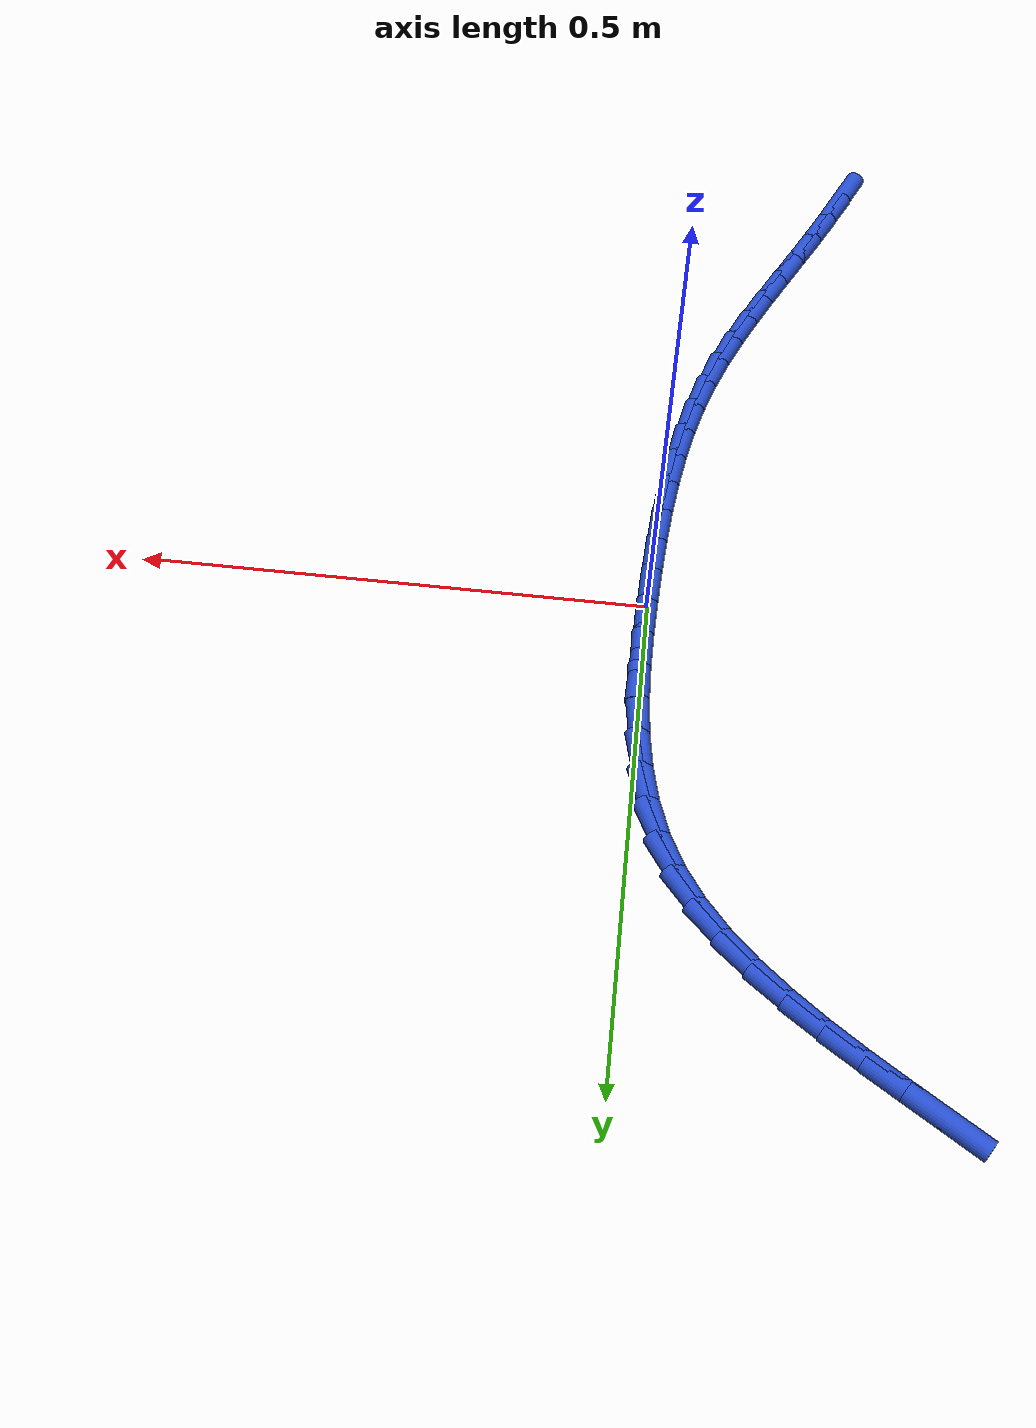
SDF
<sdf version="1.6">
 <world name="default">
  <model name="ground_plane">
   <static>1</static>
   <link name="link">
    <collision name="collision">
     <geometry><plane><normal>0 0 1</normal><size>100 100</size></plane></geometry>
     <surface><friction><ode><mu>100</mu><mu2>50</mu2></ode></friction></surface>
    </collision>
    <visual name="visual">
     <cast_shadows>0</cast_shadows>
     <geometry><plane><normal>0 0 1</normal><size>100 100</size></plane></geometry>
     <material>
      <script><uri>file://media/materials/scripts/gazebo.material</uri><name>Gazebo/WhiteGlow</name></script>
     </material>
    </visual>
   </link>
  </model>
  <model name="line">
   <link name="link_0">
    <pose>-1.2197274440461925e-17 6.938893903907228e-18 0.01 0 1.57 1.5378652653499347</pose>
    <collision name="collision">
     <geometry><cylinder><radius>0.01</radius><length>0.08</length></cylinder></geometry>
    </collision>
    <visual name="visual">
     <material>
      <script><name>Gazebo/Blue</name><uri>file://media/materials/scripts/gazebo.material</uri></script>
     </material>
     <geometry><cylinder><radius>0.01</radius><length>0.08</length></cylinder></geometry>
    </visual>
   </link>
   <link name="link_1">
    <pose>0.0012553249739792628 0.03810600402900259 0.01 0 1.57 1.5622024554582632</pose>
    <collision name="collision">
     <geometry><cylinder><radius>0.01</radius><length>0.08</length></cylinder></geometry>
    </collision>
    <visual name="visual">
     <material>
      <script><name>Gazebo/Blue</name><uri>file://media/materials/scripts/gazebo.material</uri></script>
     </material>
     <geometry><cylinder><radius>0.01</radius><length>0.08</length></cylinder></geometry>
    </visual>
   </link>
   <link name="link_2">
    <pose>0.0015832489925126816 0.07626295713511785 0.01 0 1.57 -1.5416689976008755</pose>
    <collision name="collision">
     <geometry><cylinder><radius>0.01</radius><length>0.08</length></cylinder></geometry>
    </collision>
    <visual name="visual">
     <material>
      <script><name>Gazebo/Blue</name><uri>file://media/materials/scripts/gazebo.material</uri></script>
     </material>
     <geometry><cylinder><radius>0.01</radius><length>0.08</length></cylinder></geometry>
    </visual>
   </link>
   <link name="link_3">
    <pose>0.00047945373452400663 0.11414775869731687 0.01 0 1.57 -1.489456489503865</pose>
    <collision name="collision">
     <geometry><cylinder><radius>0.01</radius><length>0.08</length></cylinder></geometry>
    </collision>
    <visual name="visual">
     <material>
      <script><name>Gazebo/Blue</name><uri>file://media/materials/scripts/gazebo.material</uri></script>
     </material>
     <geometry><cylinder><radius>0.01</radius><length>0.08</length></cylinder></geometry>
    </visual>
   </link>
   <link name="link_4">
    <pose>-0.0025603791210629927 0.15143730809457104 0.01 0 1.57 -1.4212474075831878</pose>
    <collision name="collision">
     <geometry><cylinder><radius>0.01</radius><length>0.08</length></cylinder></geometry>
    </collision>
    <visual name="visual">
     <material>
      <script><name>Gazebo/Blue</name><uri>file://media/materials/scripts/gazebo.material</uri></script>
     </material>
     <geometry><cylinder><radius>0.01</radius><length>0.08</length></cylinder></geometry>
    </visual>
   </link>
   <link name="link_5">
    <pose>-0.008040567895324554 0.18780850470585142 0.01 0 1.57 -1.3354202576772765</pose>
    <collision name="collision">
     <geometry><cylinder><radius>0.01</radius><length>0.08</length></cylinder></geometry>
    </collision>
    <visual name="visual">
     <material>
      <script><name>Gazebo/Blue</name><uri>file://media/materials/scripts/gazebo.material</uri></script>
     </material>
     <geometry><cylinder><radius>0.01</radius><length>0.08</length></cylinder></geometry>
    </visual>
   </link>
   <link name="link_6">
    <pose>-0.016465430909336908 0.22293824791012934 0.01 0 1.57 -1.2307801653168424</pose>
    <collision name="collision">
     <geometry><cylinder><radius>0.01</radius><length>0.08</length></cylinder></geometry>
    </collision>
    <visual name="visual">
     <material>
      <script><name>Gazebo/Blue</name><uri>file://media/materials/scripts/gazebo.material</uri></script>
     </material>
     <geometry><cylinder><radius>0.01</radius><length>0.08</length></cylinder></geometry>
    </visual>
   </link>
   <link name="link_7">
    <pose>-0.02833928648417628 0.25650343708637585 0.01 0 1.57 -1.1074930269205026</pose>
    <collision name="collision">
     <geometry><cylinder><radius>0.01</radius><length>0.08</length></cylinder></geometry>
    </collision>
    <visual name="visual">
     <material>
      <script><name>Gazebo/Blue</name><uri>file://media/materials/scripts/gazebo.material</uri></script>
     </material>
     <geometry><cylinder><radius>0.01</radius><length>0.08</length></cylinder></geometry>
    </visual>
   </link>
   <link name="link_8">
    <pose>-0.04416485528396204 0.28818183789981355 0.01 0 1.57 -0.9776399475191118</pose>
    <collision name="collision">
     <geometry><cylinder><radius>0.01</radius><length>0.08</length></cylinder></geometry>
    </collision>
    <visual name="visual">
     <material>
      <script><name>Gazebo/Blue</name><uri>file://media/materials/scripts/gazebo.material</uri></script>
     </material>
     <geometry><cylinder><radius>0.01</radius><length>0.08</length></cylinder></geometry>
    </visual>
   </link>
   <link name="link_9">
    <pose>-0.06414196355037402 0.31781545231973096 0.01 0 1.57 -0.865268293751687</pose>
    <collision name="collision">
     <geometry><cylinder><radius>0.01</radius><length>0.08</length></cylinder></geometry>
    </collision>
    <visual name="visual">
     <material>
      <script><name>Gazebo/Blue</name><uri>file://media/materials/scripts/gazebo.material</uri></script>
     </material>
     <geometry><cylinder><radius>0.01</radius><length>0.08</length></cylinder></geometry>
    </visual>
   </link>
   <link name="link_10">
    <pose>-0.08781143223741854 0.3456036100995852 0.01 0 1.57 -0.7735691061702502</pose>
    <collision name="collision">
     <geometry><cylinder><radius>0.01</radius><length>0.08</length></cylinder></geometry>
    </collision>
    <visual name="visual">
     <material>
      <script><name>Gazebo/Blue</name><uri>file://media/materials/scripts/gazebo.material</uri></script>
     </material>
     <geometry><cylinder><radius>0.01</radius><length>0.08</length></cylinder></geometry>
    </visual>
   </link>
   <link name="link_11">
    <pose>-0.11462746030926872 0.37179260942277814 0.01 0 1.57 -0.7011665936191535</pose>
    <collision name="collision">
     <geometry><cylinder><radius>0.01</radius><length>0.08</length></cylinder></geometry>
    </collision>
    <visual name="visual">
     <material>
      <script><name>Gazebo/Blue</name><uri>file://media/materials/scripts/gazebo.material</uri></script>
     </material>
     <geometry><cylinder><radius>0.01</radius><length>0.08</length></cylinder></geometry>
    </visual>
   </link>
   <link name="link_12">
    <pose>-0.14404424673009783 0.396628748472712 0.01 0 1.57 -0.6460538107792938</pose>
    <collision name="collision">
     <geometry><cylinder><radius>0.01</radius><length>0.08</length></cylinder></geometry>
    </collision>
    <visual name="visual">
     <material>
      <script><name>Gazebo/Blue</name><uri>file://media/materials/scripts/gazebo.material</uri></script>
     </material>
     <geometry><cylinder><radius>0.01</radius><length>0.08</length></cylinder></geometry>
    </visual>
   </link>
   <link name="link_13">
    <pose>-0.17551599046407892 0.4203583254327884 0.01 0 1.57 -0.6062899957121826</pose>
    <collision name="collision">
     <geometry><cylinder><radius>0.01</radius><length>0.08</length></cylinder></geometry>
    </collision>
    <visual name="visual">
     <material>
      <script><name>Gazebo/Blue</name><uri>file://media/materials/scripts/gazebo.material</uri></script>
     </material>
     <geometry><cylinder><radius>0.01</radius><length>0.08</length></cylinder></geometry>
    </visual>
   </link>
   <link name="link_14">
    <pose>-0.2084968904753851 0.4432276384864097 0.01 0 1.57 -0.5803326571098348</pose>
    <collision name="collision">
     <geometry><cylinder><radius>0.01</radius><length>0.08</length></cylinder></geometry>
    </collision>
    <visual name="visual">
     <material>
      <script><name>Gazebo/Blue</name><uri>file://media/materials/scripts/gazebo.material</uri></script>
     </material>
     <geometry><cylinder><radius>0.01</radius><length>0.08</length></cylinder></geometry>
    </visual>
   </link>
   <link name="link_15">
    <pose>-0.24244114572818976 0.4654829858169777 0.01 0 1.57 -0.5671656148158033</pose>
    <collision name="collision">
     <geometry><cylinder><radius>0.01</radius><length>0.08</length></cylinder></geometry>
    </collision>
    <visual name="visual">
     <material>
      <script><name>Gazebo/Blue</name><uri>file://media/materials/scripts/gazebo.material</uri></script>
     </material>
     <geometry><cylinder><radius>0.01</radius><length>0.08</length></cylinder></geometry>
    </visual>
   </link>
   <link name="link_16">
    <pose>-0.27680295518666576 0.4873706656078943 0.01 0 1.57 -0.5663406551424146</pose>
    <collision name="collision">
     <geometry><cylinder><radius>0.01</radius><length>0.08</length></cylinder></geometry>
    </collision>
    <visual name="visual">
     <material>
      <script><name>Gazebo/Blue</name><uri>file://media/materials/scripts/gazebo.material</uri></script>
     </material>
     <geometry><cylinder><radius>0.01</radius><length>0.08</length></cylinder></geometry>
    </visual>
   </link>
   <link name="link_203">
    <pose>-0.18116815902450484 -0.5897944719834791 0.01 0 1.57 1.1467071939041702</pose>
    <collision name="collision">
     <geometry><cylinder><radius>0.01</radius><length>0.08</length></cylinder></geometry>
    </collision>
    <visual name="visual">
     <material>
      <script><name>Gazebo/Blue</name><uri>file://media/materials/scripts/gazebo.material</uri></script>
     </material>
     <geometry><cylinder><radius>0.01</radius><length>0.08</length></cylinder></geometry>
    </visual>
   </link>
   <link name="link_204">
    <pose>-0.16546160392253842 -0.5550059083669285 0.01 0 1.57 1.1274959884824285</pose>
    <collision name="collision">
     <geometry><cylinder><radius>0.01</radius><length>0.08</length></cylinder></geometry>
    </collision>
    <visual name="visual">
     <material>
      <script><name>Gazebo/Blue</name><uri>file://media/materials/scripts/gazebo.material</uri></script>
     </material>
     <geometry><cylinder><radius>0.01</radius><length>0.08</length></cylinder></geometry>
    </visual>
   </link>
   <link name="link_205">
    <pose>-0.1492367124776591 -0.5208351941748639 0.01 0 1.57 1.1110556240193383</pose>
    <collision name="collision">
     <geometry><cylinder><radius>0.01</radius><length>0.08</length></cylinder></geometry>
    </collision>
    <visual name="visual">
     <material>
      <script><name>Gazebo/Blue</name><uri>file://media/materials/scripts/gazebo.material</uri></script>
     </material>
     <geometry><cylinder><radius>0.01</radius><length>0.08</length></cylinder></geometry>
    </visual>
   </link>
   <link name="link_206">
    <pose>-0.13261529805189137 -0.48726511504855274 0.01 0 1.57 1.1041088044929708</pose>
    <collision name="collision">
     <geometry><cylinder><radius>0.01</radius><length>0.08</length></cylinder></geometry>
    </collision>
    <visual name="visual">
     <material>
      <script><name>Gazebo/Blue</name><uri>file://media/materials/scripts/gazebo.material</uri></script>
     </material>
     <geometry><cylinder><radius>0.01</radius><length>0.08</length></cylinder></geometry>
    </visual>
   </link>
   <link name="link_207">
    <pose>-0.11591979424882048 -0.4541263391149419 0.01 0 1.57 1.1071277555232966</pose>
    <collision name="collision">
     <geometry><cylinder><radius>0.01</radius><length>0.08</length></cylinder></geometry>
    </collision>
    <visual name="visual">
     <material>
      <script><name>Gazebo/Blue</name><uri>file://media/materials/scripts/gazebo.material</uri></script>
     </material>
     <geometry><cylinder><radius>0.01</radius><length>0.08</length></cylinder></geometry>
    </visual>
   </link>
   <link name="link_208">
    <pose>-0.0994783598391855 -0.42124519347243045 0.01 0 1.57 1.1203919989128481</pose>
    <collision name="collision">
     <geometry><cylinder><radius>0.01</radius><length>0.08</length></cylinder></geometry>
    </collision>
    <visual name="visual">
     <material>
      <script><name>Gazebo/Blue</name><uri>file://media/materials/scripts/gazebo.material</uri></script>
     </material>
     <geometry><cylinder><radius>0.01</radius><length>0.08</length></cylinder></geometry>
    </visual>
   </link>
   <link name="link_209">
    <pose>-0.08361915359372411 -0.3884480052194149 0.01 0 1.57 1.1441631209756538</pose>
    <collision name="collision">
     <geometry><cylinder><radius>0.01</radius><length>0.08</length></cylinder></geometry>
    </collision>
    <visual name="visual">
     <material>
      <script><name>Gazebo/Blue</name><uri>file://media/materials/scripts/gazebo.material</uri></script>
     </material>
     <geometry><cylinder><radius>0.01</radius><length>0.08</length></cylinder></geometry>
    </visual>
   </link>
   <link name="link_210">
    <pose>-0.06867033428317444 -0.35556110145429265 0.01 0 1.57 1.1786387697830738</pose>
    <collision name="collision">
     <geometry><cylinder><radius>0.01</radius><length>0.08</length></cylinder></geometry>
    </collision>
    <visual name="visual">
     <material>
      <script><name>Gazebo/Blue</name><uri>file://media/materials/scripts/gazebo.material</uri></script>
     </material>
     <geometry><cylinder><radius>0.01</radius><length>0.08</length></cylinder></geometry>
    </visual>
   </link>
   <link name="link_211">
    <pose>-0.054960060678274705 -0.3224108092754614 0.01 0 1.57 1.223867638777202</pose>
    <collision name="collision">
     <geometry><cylinder><radius>0.01</radius><length>0.08</length></cylinder></geometry>
    </collision>
    <visual name="visual">
     <material>
      <script><name>Gazebo/Blue</name><uri>file://media/materials/scripts/gazebo.material</uri></script>
     </material>
     <geometry><cylinder><radius>0.01</radius><length>0.08</length></cylinder></geometry>
    </visual>
   </link>
   <link name="link_212">
    <pose>-0.04281649154976277 -0.2888234557813176 0.01 0 1.57 1.2783246763769756</pose>
    <collision name="collision">
     <geometry><cylinder><radius>0.01</radius><length>0.08</length></cylinder></geometry>
    </collision>
    <visual name="visual">
     <material>
      <script><name>Gazebo/Blue</name><uri>file://media/materials/scripts/gazebo.material</uri></script>
     </material>
     <geometry><cylinder><radius>0.01</radius><length>0.08</length></cylinder></geometry>
    </visual>
   </link>
   <link name="link_213">
    <pose>-0.032524407895341764 -0.25464258416076346 0.01 0 1.57 1.3316174852841705</pose>
    <collision name="collision">
     <geometry><cylinder><radius>0.01</radius><length>0.08</length></cylinder></geometry>
    </collision>
    <visual name="visual">
     <material>
      <script><name>Gazebo/Blue</name><uri>file://media/materials/scripts/gazebo.material</uri></script>
     </material>
     <geometry><cylinder><radius>0.01</radius><length>0.08</length></cylinder></geometry>
    </visual>
   </link>
   <link name="link_214">
    <pose>-0.024038580032365538 -0.21984271467557057 0.01 0 1.57 1.3788509291868583</pose>
    <collision name="collision">
     <geometry><cylinder><radius>0.01</radius><length>0.08</length></cylinder></geometry>
    </collision>
    <visual name="visual">
     <material>
      <script><name>Gazebo/Blue</name><uri>file://media/materials/scripts/gazebo.material</uri></script>
     </material>
     <geometry><cylinder><radius>0.01</radius><length>0.08</length></cylinder></geometry>
    </visual>
   </link>
   <link name="link_215">
    <pose>-0.017162097561367495 -0.1844585677491522 0.01 0 1.57 1.419870103441604</pose>
    <collision name="collision">
     <geometry><cylinder><radius>0.01</radius><length>0.08</length></cylinder></geometry>
    </collision>
    <visual name="visual">
     <material>
      <script><name>Gazebo/Blue</name><uri>file://media/materials/scripts/gazebo.material</uri></script>
     </material>
     <geometry><cylinder><radius>0.01</radius><length>0.08</length></cylinder></geometry>
    </visual>
   </link>
   <link name="link_216">
    <pose>-0.011697250022746087 -0.1485251813386881 0.01 0 1.57 1.4546897676758412</pose>
    <collision name="collision">
     <geometry><cylinder><radius>0.01</radius><length>0.08</length></cylinder></geometry>
    </collision>
    <visual name="visual">
     <material>
      <script><name>Gazebo/Blue</name><uri>file://media/materials/scripts/gazebo.material</uri></script>
     </material>
     <geometry><cylinder><radius>0.01</radius><length>0.08</length></cylinder></geometry>
    </visual>
   </link>
   <link name="link_217">
    <pose>-0.007446326956900156 -0.11207759340136085 0.01 0 1.57 1.4834213734165516</pose>
    <collision name="collision">
     <geometry><cylinder><radius>0.01</radius><length>0.08</length></cylinder></geometry>
    </collision>
    <visual name="visual">
     <material>
      <script><name>Gazebo/Blue</name><uri>file://media/materials/scripts/gazebo.material</uri></script>
     </material>
     <geometry><cylinder><radius>0.01</radius><length>0.08</length></cylinder></geometry>
    </visual>
   </link>
   <link name="link_218">
    <pose>-0.004211617904228125 -0.07515084189435012 0.01 0 1.57 1.506231421397495</pose>
    <collision name="collision">
     <geometry><cylinder><radius>0.01</radius><length>0.08</length></cylinder></geometry>
    </collision>
    <visual name="visual">
     <material>
      <script><name>Gazebo/Blue</name><uri>file://media/materials/scripts/gazebo.material</uri></script>
     </material>
     <geometry><cylinder><radius>0.01</radius><length>0.08</length></cylinder></geometry>
    </visual>
   </link>
   <link name="link_219">
    <pose>-0.001795412405128567 -0.03777996477483664 0.01 0 1.57 1.5233091826442848</pose>
    <collision name="collision">
     <geometry><cylinder><radius>0.01</radius><length>0.08</length></cylinder></geometry>
    </collision>
    <visual name="visual">
     <material>
      <script><name>Gazebo/Blue</name><uri>file://media/materials/scripts/gazebo.material</uri></script>
     </material>
     <geometry><cylinder><radius>0.01</radius><length>0.08</length></cylinder></geometry>
    </visual>
   </link>
   <link name="link_220">
    <pose>-1.962405932198763e-17 -9.020562075079397e-17 0.01 0 1.57 1.5348436636127172</pose>
    <collision name="collision">
     <geometry><cylinder><radius>0.01</radius><length>0.08</length></cylinder></geometry>
    </collision>
    <visual name="visual">
     <material>
      <script><name>Gazebo/Blue</name><uri>file://media/materials/scripts/gazebo.material</uri></script>
     </material>
     <geometry><cylinder><radius>0.01</radius><length>0.08</length></cylinder></geometry>
    </visual>
   </link>
   <link name="link_221">
    <pose>0.0013723297707588298 0.038154014472976 0.01 0 1.57 1.5410086365456832</pose>
    <collision name="collision">
     <geometry><cylinder><radius>0.01</radius><length>0.08</length></cylinder></geometry>
    </collision>
    <visual name="visual">
     <material>
      <script><name>Gazebo/Blue</name><uri>file://media/materials/scripts/gazebo.material</uri></script>
     </material>
     <geometry><cylinder><radius>0.01</radius><length>0.08</length></cylinder></geometry>
    </visual>
   </link>
   <link name="link_222">
    <pose>0.002519287366749547 0.07664704068691477 0.01 0 1.57 1.5379394716037835</pose>
    <collision name="collision">
     <geometry><cylinder><radius>0.01</radius><length>0.08</length></cylinder></geometry>
    </collision>
    <visual name="visual">
     <material>
      <script><name>Gazebo/Blue</name><uri>file://media/materials/scripts/gazebo.material</uri></script>
     </material>
     <geometry><cylinder><radius>0.01</radius><length>0.08</length></cylinder></geometry>
    </visual>
   </link>
  </model>
 </world>
</sdf>
